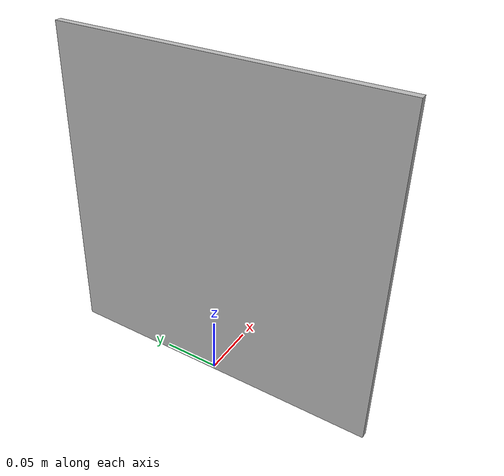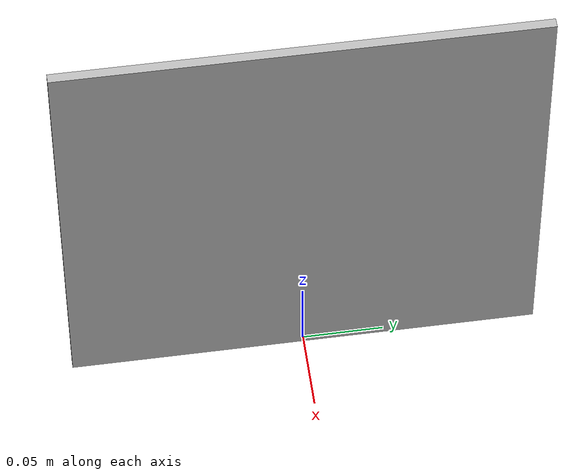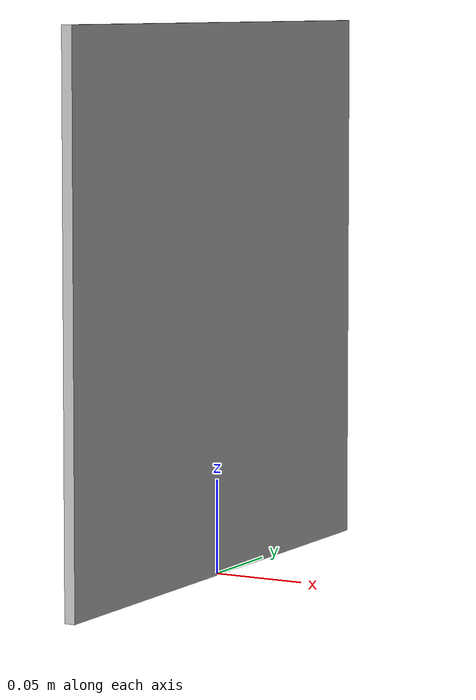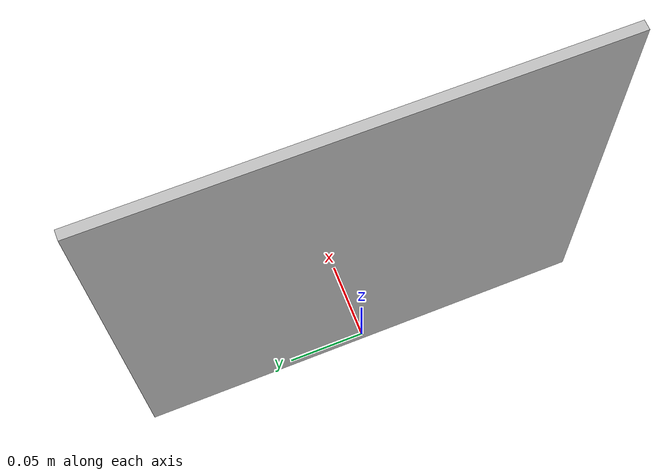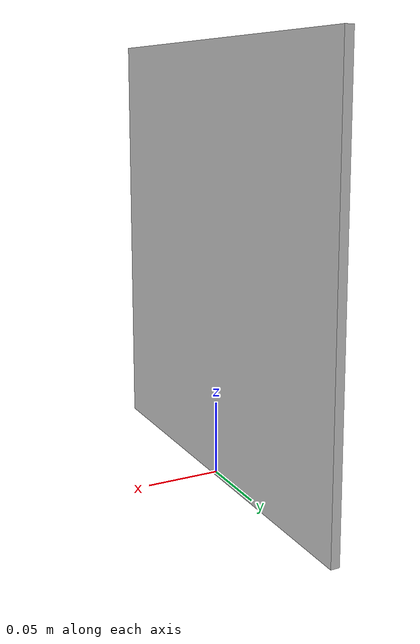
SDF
<?xml version="1.0" ?><sdf version="1.5">
  <model name="Marker0">
    <static>true</static>
    <link name="link">
      <visual name="visual">
        <geometry>
          <mesh>
            <uri>model://marker0/meshes/Marker0.dae</uri>
          <scale>0.58 0.58 0.58</scale></mesh>
        </geometry>
      </visual>
    </link>
  </model>
</sdf>
